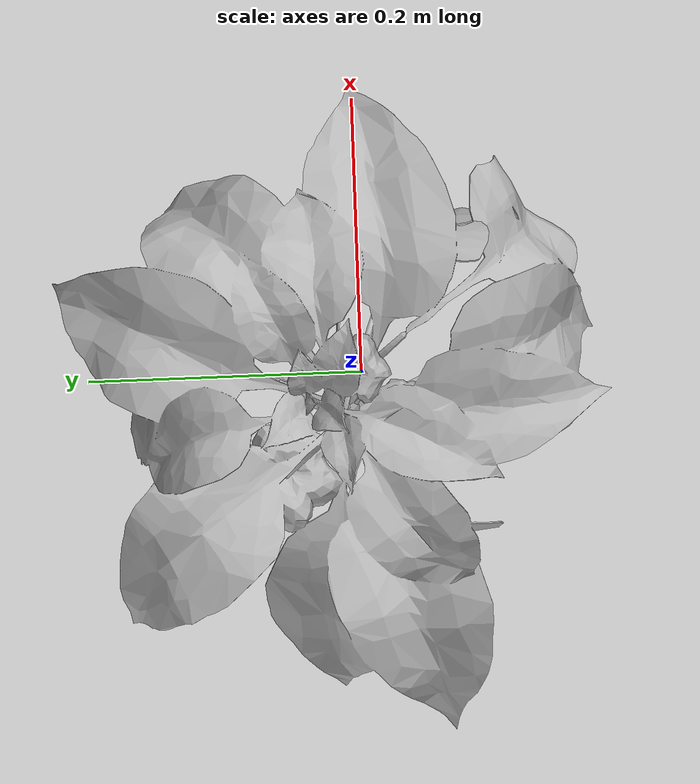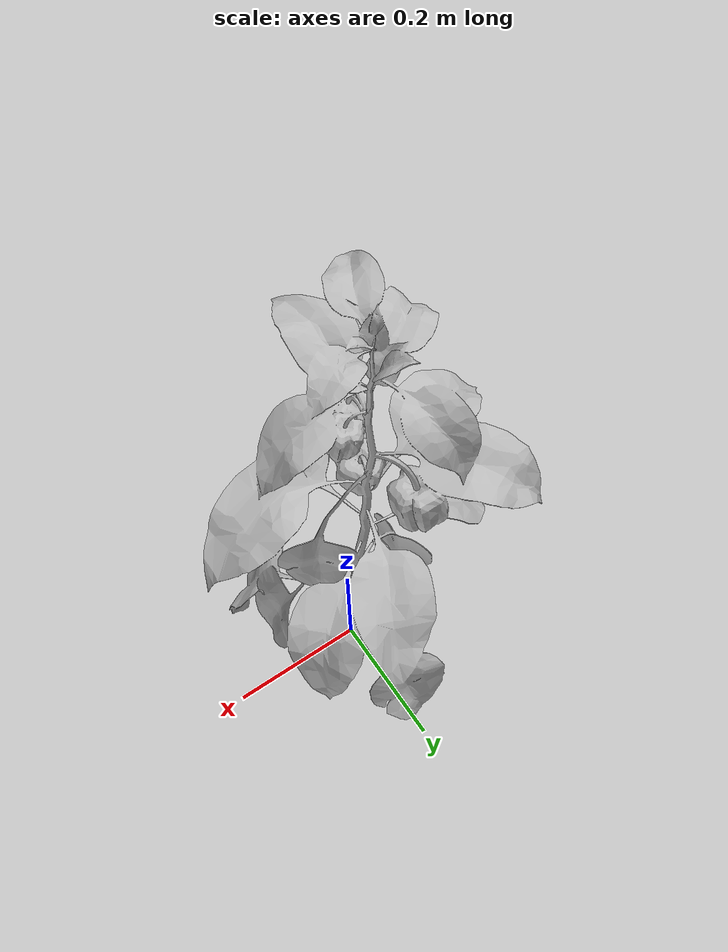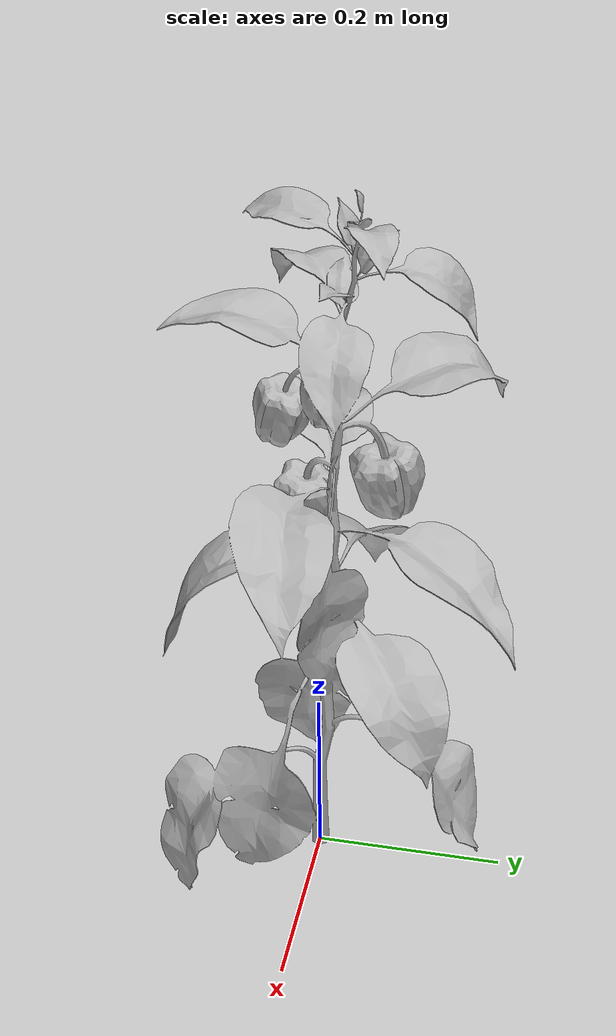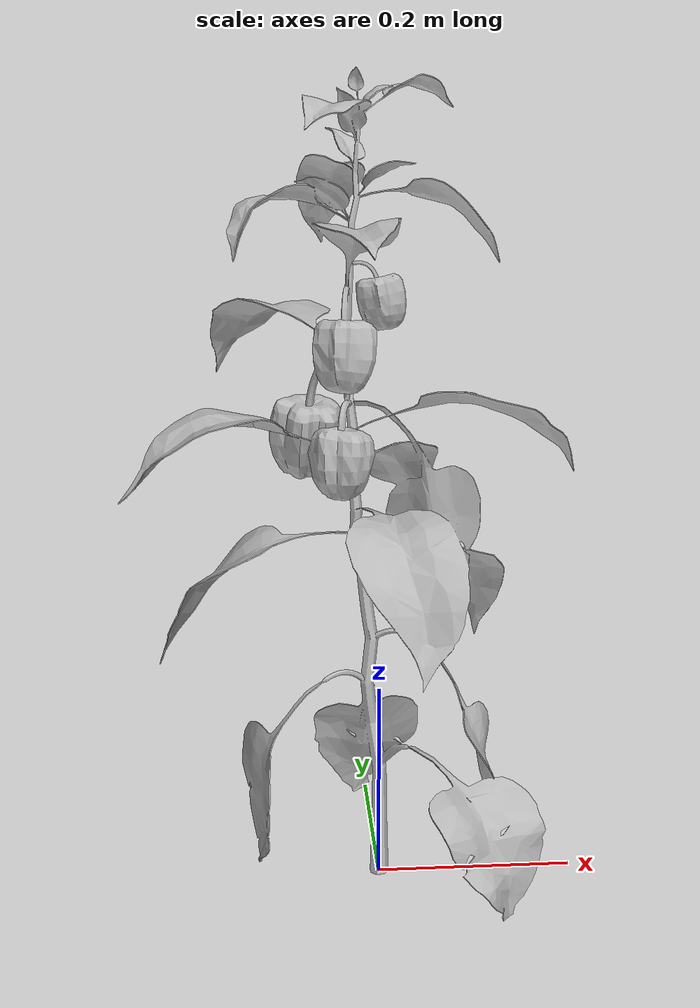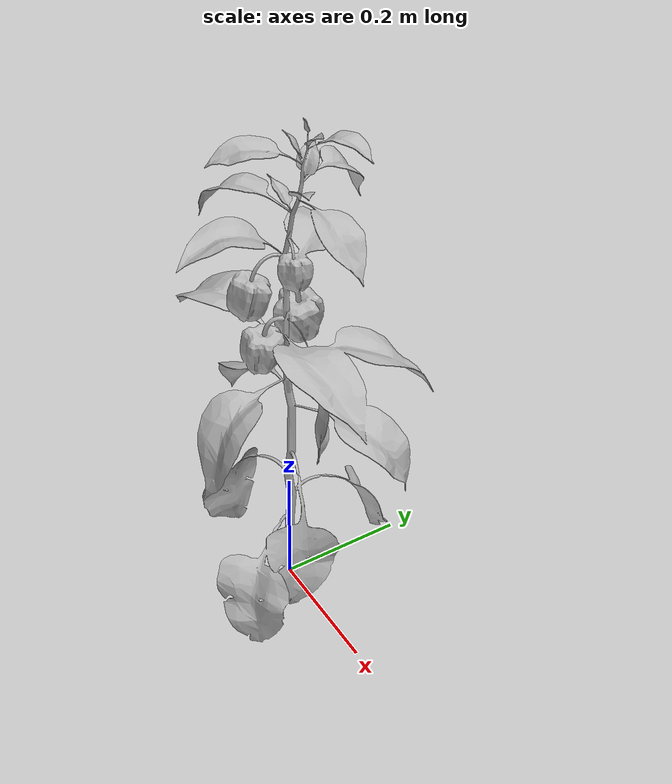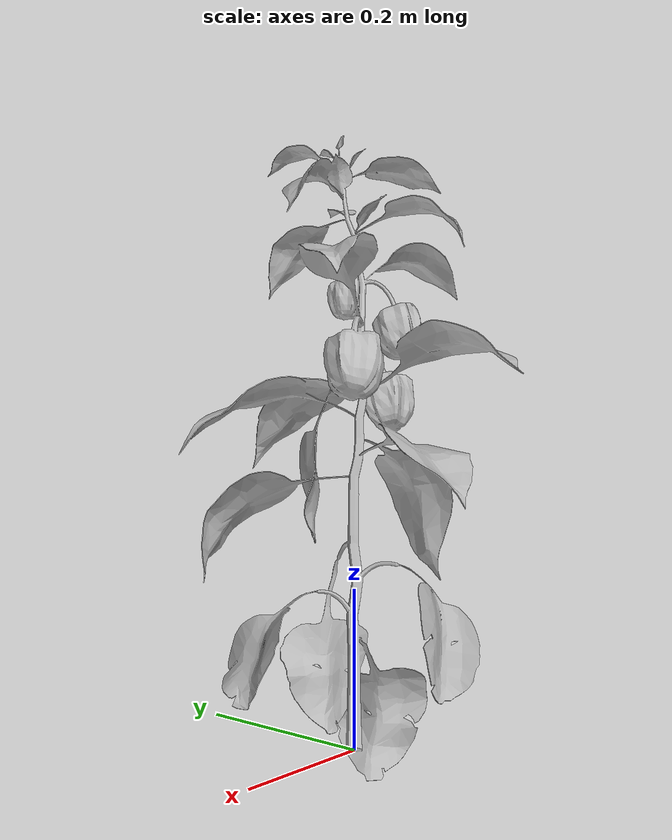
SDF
<?xml version='1.0'?>
<sdf version='1.6'>
  <model name='capsicum_plant_3'>
    <link name='link_capsicum_plant_3'>
       <visual name='visual'>
        <pose frame=''>0 0 0 0 0 0</pose>
        <geometry>
          <mesh>
            <uri>model://capsicum_plant_3/meshes/VG07_3.dae</uri>
          </mesh>
        </geometry>
      </visual>
    </link>
    <static>1</static>
  </model>
</sdf>
